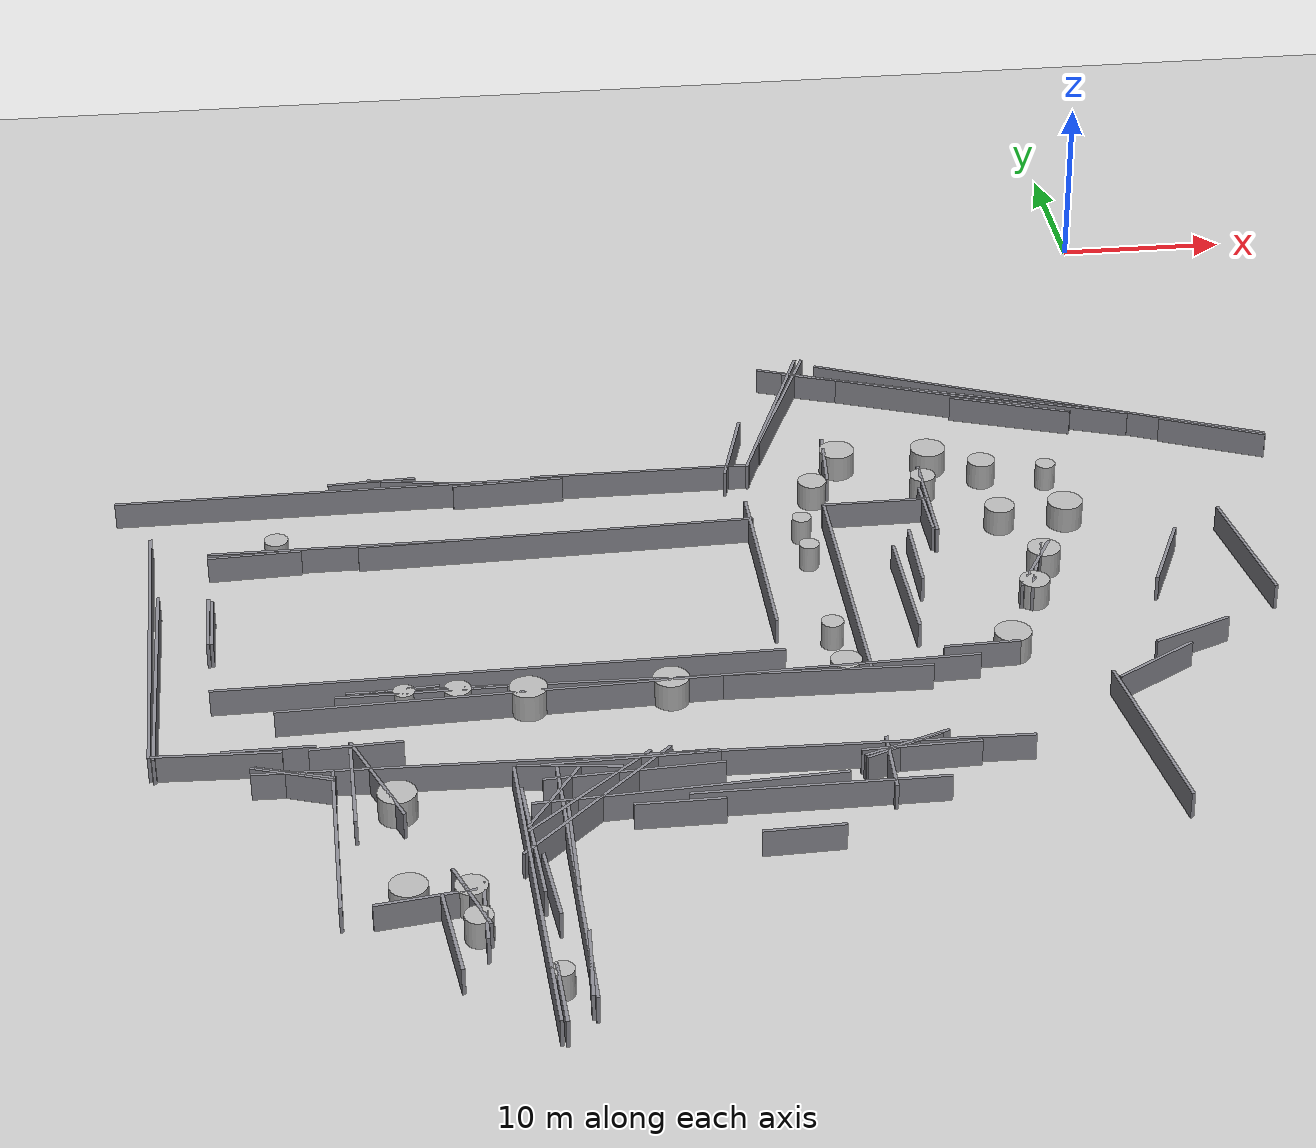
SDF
<?xml version="1.0"?>
<sdf version="1.6">
  <world name="map_real_1_world">
    <gravity>0 0 -9.81</gravity>
    <include><uri>model://ground_plane</uri></include>
    <include><uri>model://sun</uri></include>

    <physics type="ode">
      <max_step_size>0.001</max_step_size>
      <real_time_update_rate>1000</real_time_update_rate>
    </physics>

    <!-- Generated from the ROS occupancy map. Static obstacles are collision-safe walls. -->
    <model name="map_real_1_walls">
      <static>true</static>
      <self_collide>false</self_collide>
      <link name="wall_0000">
        <pose>-32.2968 -53.4881 0.7500 0 0 3.1128</pose>
        <collision name="collision">
          <geometry>
            <box><size>39.5153 0.1800 1.5000</size></box>
          </geometry>
        </collision>
        <visual name="visual">
          <geometry>
            <box><size>39.5153 0.1800 1.5000</size></box>
          </geometry>
          <material>
            <ambient>0.35 0.35 0.38 1</ambient>
            <diffuse>0.55 0.55 0.58 1</diffuse>
          </material>
        </visual>
      </link>
      <link name="wall_0001">
        <pose>-32.4465 -47.1259 0.7500 0 0 0.0279</pose>
        <collision name="collision">
          <geometry>
            <box><size>36.8220 0.1800 1.5000</size></box>
          </geometry>
        </collision>
        <visual name="visual">
          <geometry>
            <box><size>36.8220 0.1800 1.5000</size></box>
          </geometry>
          <material>
            <ambient>0.35 0.35 0.38 1</ambient>
            <diffuse>0.55 0.55 0.58 1</diffuse>
          </material>
        </visual>
      </link>
      <link name="wall_0002">
        <pose>-31.9066 -46.8629 0.7500 0 0 -0.0308</pose>
        <collision name="collision">
          <geometry>
            <box><size>30.5102 0.1800 1.5000</size></box>
          </geometry>
        </collision>
        <visual name="visual">
          <geometry>
            <box><size>30.5102 0.1800 1.5000</size></box>
          </geometry>
          <material>
            <ambient>0.35 0.35 0.38 1</ambient>
            <diffuse>0.55 0.55 0.58 1</diffuse>
          </material>
        </visual>
      </link>
      <link name="wall_0003">
        <pose>-39.1482 -45.1993 0.7500 0 0 0.0120</pose>
        <collision name="collision">
          <geometry>
            <box><size>30.0050 0.1800 1.5000</size></box>
          </geometry>
        </collision>
        <visual name="visual">
          <geometry>
            <box><size>30.0050 0.1800 1.5000</size></box>
          </geometry>
          <material>
            <ambient>0.35 0.35 0.38 1</ambient>
            <diffuse>0.55 0.55 0.58 1</diffuse>
          </material>
        </visual>
      </link>
      <link name="wall_0004">
        <pose>-6.0743 -20.7906 0.7500 0 0 -0.4080</pose>
        <collision name="collision">
          <geometry>
            <box><size>27.0619 0.1800 1.5000</size></box>
          </geometry>
        </collision>
        <visual name="visual">
          <geometry>
            <box><size>27.0619 0.1800 1.5000</size></box>
          </geometry>
          <material>
            <ambient>0.35 0.35 0.38 1</ambient>
            <diffuse>0.55 0.55 0.58 1</diffuse>
          </material>
        </visual>
      </link>
      <link name="wall_0005">
        <pose>-47.9497 -26.3851 0.7500 0 0 0.0016</pose>
        <collision name="collision">
          <geometry>
            <box><size>23.1998 0.1800 1.5000</size></box>
          </geometry>
        </collision>
        <visual name="visual">
          <geometry>
            <box><size>23.1998 0.1800 1.5000</size></box>
          </geometry>
          <material>
            <ambient>0.35 0.35 0.38 1</ambient>
            <diffuse>0.55 0.55 0.58 1</diffuse>
          </material>
        </visual>
      </link>
      <link name="wall_0006">
        <pose>-35.2016 -32.2281 0.7500 0 0 0.0225</pose>
        <collision name="collision">
          <geometry>
            <box><size>21.9012 0.1800 1.5000</size></box>
          </geometry>
        </collision>
        <visual name="visual">
          <geometry>
            <box><size>21.9012 0.1800 1.5000</size></box>
          </geometry>
          <material>
            <ambient>0.35 0.35 0.38 1</ambient>
            <diffuse>0.55 0.55 0.58 1</diffuse>
          </material>
        </visual>
      </link>
      <link name="wall_0007">
        <pose>-10.7991 -19.5793 0.7500 0 0 -0.3410</pose>
        <collision name="collision">
          <geometry>
            <box><size>20.6848 0.1800 1.5000</size></box>
          </geometry>
        </collision>
        <visual name="visual">
          <geometry>
            <box><size>20.6848 0.1800 1.5000</size></box>
          </geometry>
          <material>
            <ambient>0.35 0.35 0.38 1</ambient>
            <diffuse>0.55 0.55 0.58 1</diffuse>
          </material>
        </visual>
      </link>
      <link name="wall_0008">
        <pose>-57.2846 -40.6507 0.7500 0 0 1.5897</pose>
        <collision name="collision">
          <geometry>
            <box><size>20.6039 0.1800 1.5000</size></box>
          </geometry>
        </collision>
        <visual name="visual">
          <geometry>
            <box><size>20.6039 0.1800 1.5000</size></box>
          </geometry>
          <material>
            <ambient>0.35 0.35 0.38 1</ambient>
            <diffuse>0.55 0.55 0.58 1</diffuse>
          </material>
        </visual>
      </link>
      <link name="wall_0009">
        <pose>-38.5594 -63.5527 0.7500 0 0 1.6155</pose>
        <collision name="collision">
          <geometry>
            <box><size>19.6206 0.1800 1.5000</size></box>
          </geometry>
        </collision>
        <visual name="visual">
          <geometry>
            <box><size>19.6206 0.1800 1.5000</size></box>
          </geometry>
          <material>
            <ambient>0.35 0.35 0.38 1</ambient>
            <diffuse>0.55 0.55 0.58 1</diffuse>
          </material>
        </visual>
      </link>
      <link name="wall_0010">
        <pose>-36.6086 -62.9502 0.7500 0 0 1.5994</pose>
        <collision name="collision">
          <geometry>
            <box><size>18.0069 0.1800 1.5000</size></box>
          </geometry>
        </collision>
        <visual name="visual">
          <geometry>
            <box><size>18.0069 0.1800 1.5000</size></box>
          </geometry>
          <material>
            <ambient>0.35 0.35 0.38 1</ambient>
            <diffuse>0.55 0.55 0.58 1</diffuse>
          </material>
        </visual>
      </link>
      <link name="wall_0011">
        <pose>-14.0934 -18.5332 0.7500 0 0 -0.3732</pose>
        <collision name="collision">
          <geometry>
            <box><size>16.8798 0.1800 1.5000</size></box>
          </geometry>
        </collision>
        <visual name="visual">
          <geometry>
            <box><size>16.8798 0.1800 1.5000</size></box>
          </geometry>
          <material>
            <ambient>0.35 0.35 0.38 1</ambient>
            <diffuse>0.55 0.55 0.58 1</diffuse>
          </material>
        </visual>
      </link>
      <link name="wall_0012">
        <pose>-20.0296 -39.1971 0.7500 0 0 1.5837</pose>
        <collision name="collision">
          <geometry>
            <box><size>16.1012 0.1800 1.5000</size></box>
          </geometry>
        </collision>
        <visual name="visual">
          <geometry>
            <box><size>16.1012 0.1800 1.5000</size></box>
          </geometry>
          <material>
            <ambient>0.35 0.35 0.38 1</ambient>
            <diffuse>0.55 0.55 0.58 1</diffuse>
          </material>
        </visual>
      </link>
      <link name="wall_0013">
        <pose>-30.3503 -56.4934 0.7500 0 0 -3.0891</pose>
        <collision name="collision">
          <geometry>
            <box><size>16.0147 0.1800 1.5000</size></box>
          </geometry>
        </collision>
        <visual name="visual">
          <geometry>
            <box><size>16.0147 0.1800 1.5000</size></box>
          </geometry>
          <material>
            <ambient>0.35 0.35 0.38 1</ambient>
            <diffuse>0.55 0.55 0.58 1</diffuse>
          </material>
        </visual>
      </link>
      <link name="wall_0014">
        <pose>-56.9065 -43.7000 0.7500 0 0 -1.5660</pose>
        <collision name="collision">
          <geometry>
            <box><size>14.9003 0.1800 1.5000</size></box>
          </geometry>
        </collision>
        <visual name="visual">
          <geometry>
            <box><size>14.9003 0.1800 1.5000</size></box>
          </geometry>
          <material>
            <ambient>0.35 0.35 0.38 1</ambient>
            <diffuse>0.55 0.55 0.58 1</diffuse>
          </material>
        </visual>
      </link>
      <link name="wall_0015">
        <pose>-47.5000 -32.3005 0.7500 0 0 3.1362</pose>
        <collision name="collision">
          <geometry>
            <box><size>13.7003 0.1800 1.5000</size></box>
          </geometry>
        </collision>
        <visual name="visual">
          <geometry>
            <box><size>13.7003 0.1800 1.5000</size></box>
          </geometry>
          <material>
            <ambient>0.35 0.35 0.38 1</ambient>
            <diffuse>0.55 0.55 0.58 1</diffuse>
          </material>
        </visual>
      </link>
      <link name="wall_0016">
        <pose>-23.9490 -57.0020 0.7500 0 0 -0.0029</pose>
        <collision name="collision">
          <geometry>
            <box><size>13.1999 0.1800 1.5000</size></box>
          </geometry>
        </collision>
        <visual name="visual">
          <geometry>
            <box><size>13.1999 0.1800 1.5000</size></box>
          </geometry>
          <material>
            <ambient>0.35 0.35 0.38 1</ambient>
            <diffuse>0.55 0.55 0.58 1</diffuse>
          </material>
        </visual>
      </link>
      <link name="wall_0017">
        <pose>-21.7242 -20.4728 0.7500 0 0 1.2194</pose>
        <collision name="collision">
          <geometry>
            <box><size>12.6873 0.1800 1.5000</size></box>
          </geometry>
        </collision>
        <visual name="visual">
          <geometry>
            <box><size>12.6873 0.1800 1.5000</size></box>
          </geometry>
          <material>
            <ambient>0.35 0.35 0.38 1</ambient>
            <diffuse>0.55 0.55 0.58 1</diffuse>
          </material>
        </visual>
      </link>
      <link name="wall_0018">
        <pose>-29.9998 -26.2219 0.7500 0 0 -0.0077</pose>
        <collision name="collision">
          <geometry>
            <box><size>12.5012 0.1800 1.5000</size></box>
          </geometry>
        </collision>
        <visual name="visual">
          <geometry>
            <box><size>12.5012 0.1800 1.5000</size></box>
          </geometry>
          <material>
            <ambient>0.35 0.35 0.38 1</ambient>
            <diffuse>0.55 0.55 0.58 1</diffuse>
          </material>
        </visual>
      </link>
      <link name="wall_0019">
        <pose>-24.3505 -36.1983 0.7500 0 0 1.5877</pose>
        <collision name="collision">
          <geometry>
            <box><size>12.1017 0.1800 1.5000</size></box>
          </geometry>
        </collision>
        <visual name="visual">
          <geometry>
            <box><size>12.1017 0.1800 1.5000</size></box>
          </geometry>
          <material>
            <ambient>0.35 0.35 0.38 1</ambient>
            <diffuse>0.55 0.55 0.58 1</diffuse>
          </material>
        </visual>
      </link>
      <link name="wall_0020">
        <pose>-35.0000 -56.9000 0.7500 0 0 0.7857</pose>
        <collision name="collision">
          <geometry>
            <box><size>11.3137 0.1800 1.5000</size></box>
          </geometry>
        </collision>
        <visual name="visual">
          <geometry>
            <box><size>11.3137 0.1800 1.5000</size></box>
          </geometry>
          <material>
            <ambient>0.35 0.35 0.38 1</ambient>
            <diffuse>0.55 0.55 0.58 1</diffuse>
          </material>
        </visual>
      </link>
      <link name="wall_0021">
        <pose>-6.6707 -54.4532 0.7500 0 0 1.7226</pose>
        <collision name="collision">
          <geometry>
            <box><size>11.0852 0.1800 1.5000</size></box>
          </geometry>
        </collision>
        <visual name="visual">
          <geometry>
            <box><size>11.0852 0.1800 1.5000</size></box>
          </geometry>
          <material>
            <ambient>0.35 0.35 0.38 1</ambient>
            <diffuse>0.55 0.55 0.58 1</diffuse>
          </material>
        </visual>
      </link>
      <link name="wall_0022">
        <pose>-47.9081 -58.5489 0.7500 0 0 -1.5593</pose>
        <collision name="collision">
          <geometry>
            <box><size>11.0004 0.1800 1.5000</size></box>
          </geometry>
        </collision>
        <visual name="visual">
          <geometry>
            <box><size>11.0004 0.1800 1.5000</size></box>
          </geometry>
          <material>
            <ambient>0.35 0.35 0.38 1</ambient>
            <diffuse>0.55 0.55 0.58 1</diffuse>
          </material>
        </visual>
      </link>
      <link name="wall_0023">
        <pose>-21.0336 -19.2364 0.7500 0 0 1.1875</pose>
        <collision name="collision">
          <geometry>
            <box><size>10.1016 0.1800 1.5000</size></box>
          </geometry>
        </collision>
        <visual name="visual">
          <geometry>
            <box><size>10.1016 0.1800 1.5000</size></box>
          </geometry>
          <material>
            <ambient>0.35 0.35 0.38 1</ambient>
            <diffuse>0.55 0.55 0.58 1</diffuse>
          </material>
        </visual>
      </link>
      <link name="wall_0024">
        <pose>-33.0397 -54.7589 0.7500 0 0 0.0494</pose>
        <collision name="collision">
          <geometry>
            <box><size>9.2184 0.1800 1.5000</size></box>
          </geometry>
        </collision>
        <visual name="visual">
          <geometry>
            <box><size>9.2184 0.1800 1.5000</size></box>
          </geometry>
          <material>
            <ambient>0.35 0.35 0.38 1</ambient>
            <diffuse>0.55 0.55 0.58 1</diffuse>
          </material>
        </visual>
      </link>
      <link name="wall_0025">
        <pose>-33.1002 -53.6880 0.7500 0 0 0.0149</pose>
        <collision name="collision">
          <geometry>
            <box><size>9.1035 0.1800 1.5000</size></box>
          </geometry>
        </collision>
        <visual name="visual">
          <geometry>
            <box><size>9.1035 0.1800 1.5000</size></box>
          </geometry>
          <material>
            <ambient>0.35 0.35 0.38 1</ambient>
            <diffuse>0.55 0.55 0.58 1</diffuse>
          </material>
        </visual>
      </link>
      <link name="wall_0026">
        <pose>-35.3500 -56.1500 0.7500 0 0 0.7378</pose>
        <collision name="collision">
          <geometry>
            <box><size>8.9196 0.1800 1.5000</size></box>
          </geometry>
        </collision>
        <visual name="visual">
          <geometry>
            <box><size>8.9196 0.1800 1.5000</size></box>
          </geometry>
          <material>
            <ambient>0.35 0.35 0.38 1</ambient>
            <diffuse>0.55 0.55 0.58 1</diffuse>
          </material>
        </visual>
      </link>
      <link name="wall_0027">
        <pose>-43.2997 -46.7265 0.7500 0 0 0.0026</pose>
        <collision name="collision">
          <geometry>
            <box><size>8.9002 0.1800 1.5000</size></box>
          </geometry>
        </collision>
        <visual name="visual">
          <geometry>
            <box><size>8.9002 0.1800 1.5000</size></box>
          </geometry>
          <material>
            <ambient>0.35 0.35 0.38 1</ambient>
            <diffuse>0.55 0.55 0.58 1</diffuse>
          </material>
        </visual>
      </link>
      <link name="wall_0028">
        <pose>-38.4500 -59.7500 0.7500 0 0 -1.4995</pose>
        <collision name="collision">
          <geometry>
            <box><size>8.4214 0.1800 1.5000</size></box>
          </geometry>
        </collision>
        <visual name="visual">
          <geometry>
            <box><size>8.4214 0.1800 1.5000</size></box>
          </geometry>
          <material>
            <ambient>0.35 0.35 0.38 1</ambient>
            <diffuse>0.55 0.55 0.58 1</diffuse>
          </material>
        </visual>
      </link>
      <link name="wall_0029">
        <pose>2.3224 -37.9465 0.7500 0 0 1.7243</pose>
        <collision name="collision">
          <geometry>
            <box><size>8.3329 0.1800 1.5000</size></box>
          </geometry>
        </collision>
        <visual name="visual">
          <geometry>
            <box><size>8.3329 0.1800 1.5000</size></box>
          </geometry>
          <material>
            <ambient>0.35 0.35 0.38 1</ambient>
            <diffuse>0.55 0.55 0.58 1</diffuse>
          </material>
        </visual>
      </link>
      <link name="wall_0030">
        <pose>-16.8640 -39.5968 0.7500 0 0 1.5940</pose>
        <collision name="collision">
          <geometry>
            <box><size>7.9002 0.1800 1.5000</size></box>
          </geometry>
        </collision>
        <visual name="visual">
          <geometry>
            <box><size>7.9002 0.1800 1.5000</size></box>
          </geometry>
          <material>
            <ambient>0.35 0.35 0.38 1</ambient>
            <diffuse>0.55 0.55 0.58 1</diffuse>
          </material>
        </visual>
      </link>
      <link name="wall_0031">
        <pose>-32.2501 -53.5472 0.7500 0 0 0.0186</pose>
        <collision name="collision">
          <geometry>
            <box><size>7.2025 0.1800 1.5000</size></box>
          </geometry>
        </collision>
        <visual name="visual">
          <geometry>
            <box><size>7.2025 0.1800 1.5000</size></box>
          </geometry>
          <material>
            <ambient>0.35 0.35 0.38 1</ambient>
            <diffuse>0.55 0.55 0.58 1</diffuse>
          </material>
        </visual>
      </link>
      <link name="wall_0032">
        <pose>-7.7000 -21.2500 0.7500 0 0 -0.3440</pose>
        <collision name="collision">
          <geometry>
            <box><size>7.1169 0.1800 1.5000</size></box>
          </geometry>
        </collision>
        <visual name="visual">
          <geometry>
            <box><size>7.1169 0.1800 1.5000</size></box>
          </geometry>
          <material>
            <ambient>0.35 0.35 0.38 1</ambient>
            <diffuse>0.55 0.55 0.58 1</diffuse>
          </material>
        </visual>
      </link>
      <link name="wall_0033">
        <pose>-36.5500 -60.3500 0.7500 0 0 1.5708</pose>
        <collision name="collision">
          <geometry>
            <box><size>6.8000 0.1800 1.5000</size></box>
          </geometry>
        </collision>
        <visual name="visual">
          <geometry>
            <box><size>6.8000 0.1800 1.5000</size></box>
          </geometry>
          <material>
            <ambient>0.35 0.35 0.38 1</ambient>
            <diffuse>0.55 0.55 0.58 1</diffuse>
          </material>
        </visual>
      </link>
      <link name="wall_0034">
        <pose>-14.2500 -30.9500 0.7500 0 0 1.5708</pose>
        <collision name="collision">
          <geometry>
            <box><size>6.8000 0.1800 1.5000</size></box>
          </geometry>
        </collision>
        <visual name="visual">
          <geometry>
            <box><size>6.8000 0.1800 1.5000</size></box>
          </geometry>
          <material>
            <ambient>0.35 0.35 0.38 1</ambient>
            <diffuse>0.55 0.55 0.58 1</diffuse>
          </material>
        </visual>
      </link>
      <link name="wall_0035">
        <pose>-45.8000 -53.9000 0.7500 0 0 -1.1930</pose>
        <collision name="collision">
          <geometry>
            <box><size>6.7779 0.1800 1.5000</size></box>
          </geometry>
        </collision>
        <visual name="visual">
          <geometry>
            <box><size>6.7779 0.1800 1.5000</size></box>
          </geometry>
          <material>
            <ambient>0.35 0.35 0.38 1</ambient>
            <diffuse>0.55 0.55 0.58 1</diffuse>
          </material>
        </visual>
      </link>
      <link name="wall_0036">
        <pose>-53.7500 -51.0000 0.7500 0 0 -0.0454</pose>
        <collision name="collision">
          <geometry>
            <box><size>6.6068 0.1800 1.5000</size></box>
          </geometry>
        </collision>
        <visual name="visual">
          <geometry>
            <box><size>6.6068 0.1800 1.5000</size></box>
          </geometry>
          <material>
            <ambient>0.35 0.35 0.38 1</ambient>
            <diffuse>0.55 0.55 0.58 1</diffuse>
          </material>
        </visual>
      </link>
      <link name="wall_0037">
        <pose>-42.1421 -46.5336 0.7500 0 0 -0.0189</pose>
        <collision name="collision">
          <geometry>
            <box><size>6.3989 0.1800 1.5000</size></box>
          </geometry>
        </collision>
        <visual name="visual">
          <geometry>
            <box><size>6.3989 0.1800 1.5000</size></box>
          </geometry>
          <material>
            <ambient>0.35 0.35 0.38 1</ambient>
            <diffuse>0.55 0.55 0.58 1</diffuse>
          </material>
        </visual>
      </link>
      <link name="wall_0038">
        <pose>3.5000 -25.1000 0.7500 0 0 -0.4133</pose>
        <collision name="collision">
          <geometry>
            <box><size>6.2241 0.1800 1.5000</size></box>
          </geometry>
        </collision>
        <visual name="visual">
          <geometry>
            <box><size>6.2241 0.1800 1.5000</size></box>
          </geometry>
          <material>
            <ambient>0.35 0.35 0.38 1</ambient>
            <diffuse>0.55 0.55 0.58 1</diffuse>
          </material>
        </visual>
      </link>
      <link name="wall_0039">
        <pose>-37.5500 -26.5500 0.7500 0 0 0.0322</pose>
        <collision name="collision">
          <geometry>
            <box><size>6.2032 0.1800 1.5000</size></box>
          </geometry>
        </collision>
        <visual name="visual">
          <geometry>
            <box><size>6.2032 0.1800 1.5000</size></box>
          </geometry>
          <material>
            <ambient>0.35 0.35 0.38 1</ambient>
            <diffuse>0.55 0.55 0.58 1</diffuse>
          </material>
        </visual>
      </link>
      <link name="wall_0040">
        <pose>-18.4500 -54.3000 0.7500 0 0 0.0161</pose>
        <collision name="collision">
          <geometry>
            <box><size>6.2008 0.1800 1.5000</size></box>
          </geometry>
        </collision>
        <visual name="visual">
          <geometry>
            <box><size>6.2008 0.1800 1.5000</size></box>
          </geometry>
          <material>
            <ambient>0.35 0.35 0.38 1</ambient>
            <diffuse>0.55 0.55 0.58 1</diffuse>
          </material>
        </visual>
      </link>
      <link name="wall_0041">
        <pose>-42.4000 -26.0000 0.7500 0 0 -0.1784</pose>
        <collision name="collision">
          <geometry>
            <box><size>6.1984 0.1800 1.5000</size></box>
          </geometry>
        </collision>
        <visual name="visual">
          <geometry>
            <box><size>6.1984 0.1800 1.5000</size></box>
          </geometry>
          <material>
            <ambient>0.35 0.35 0.38 1</ambient>
            <diffuse>0.55 0.55 0.58 1</diffuse>
          </material>
        </visual>
      </link>
      <link name="wall_0042">
        <pose>-47.0000 -54.3017 0.7500 0 0 1.5875</pose>
        <collision name="collision">
          <geometry>
            <box><size>6.1008 0.1800 1.5000</size></box>
          </geometry>
        </collision>
        <visual name="visual">
          <geometry>
            <box><size>6.1008 0.1800 1.5000</size></box>
          </geometry>
          <material>
            <ambient>0.35 0.35 0.38 1</ambient>
            <diffuse>0.55 0.55 0.58 1</diffuse>
          </material>
        </visual>
      </link>
      <link name="wall_0043">
        <pose>-17.2500 -31.0500 0.7500 0 0 0.0000</pose>
        <collision name="collision">
          <geometry>
            <box><size>6.0000 0.1800 1.5000</size></box>
          </geometry>
        </collision>
        <visual name="visual">
          <geometry>
            <box><size>6.0000 0.1800 1.5000</size></box>
          </geometry>
          <material>
            <ambient>0.35 0.35 0.38 1</ambient>
            <diffuse>0.55 0.55 0.58 1</diffuse>
          </material>
        </visual>
      </link>
      <link name="wall_0044">
        <pose>-24.5000 -24.2500 0.7500 0 0 1.3091</pose>
        <collision name="collision">
          <geometry>
            <box><size>5.7974 0.1800 1.5000</size></box>
          </geometry>
        </collision>
        <visual name="visual">
          <geometry>
            <box><size>5.7974 0.1800 1.5000</size></box>
          </geometry>
          <material>
            <ambient>0.35 0.35 0.38 1</ambient>
            <diffuse>0.55 0.55 0.58 1</diffuse>
          </material>
        </visual>
      </link>
      <link name="wall_0045">
        <pose>-42.7000 -66.4000 0.7500 0 0 -1.4486</pose>
        <collision name="collision">
          <geometry>
            <box><size>5.7428 0.1800 1.5000</size></box>
          </geometry>
        </collision>
        <visual name="visual">
          <geometry>
            <box><size>5.7428 0.1800 1.5000</size></box>
          </geometry>
          <material>
            <ambient>0.35 0.35 0.38 1</ambient>
            <diffuse>0.55 0.55 0.58 1</diffuse>
          </material>
        </visual>
      </link>
      <link name="wall_0046">
        <pose>-37.2000 -56.5000 0.7500 0 0 1.0180</pose>
        <collision name="collision">
          <geometry>
            <box><size>5.5227 0.1800 1.5000</size></box>
          </geometry>
        </collision>
        <visual name="visual">
          <geometry>
            <box><size>5.5227 0.1800 1.5000</size></box>
          </geometry>
          <material>
            <ambient>0.35 0.35 0.38 1</ambient>
            <diffuse>0.55 0.55 0.58 1</diffuse>
          </material>
        </visual>
      </link>
      <link name="wall_0047">
        <pose>-36.2000 -54.0000 0.7500 0 0 -0.1313</pose>
        <collision name="collision">
          <geometry>
            <box><size>5.3460 0.1800 1.5000</size></box>
          </geometry>
        </collision>
        <visual name="visual">
          <geometry>
            <box><size>5.3460 0.1800 1.5000</size></box>
          </geometry>
          <material>
            <ambient>0.35 0.35 0.38 1</ambient>
            <diffuse>0.55 0.55 0.58 1</diffuse>
          </material>
        </visual>
      </link>
      <link name="wall_0048">
        <pose>-2.2000 -38.1000 0.7500 0 0 1.1659</pose>
        <collision name="collision">
          <geometry>
            <box><size>5.3310 0.1800 1.5000</size></box>
          </geometry>
        </collision>
        <visual name="visual">
          <geometry>
            <box><size>5.3310 0.1800 1.5000</size></box>
          </geometry>
          <material>
            <ambient>0.35 0.35 0.38 1</ambient>
            <diffuse>0.55 0.55 0.58 1</diffuse>
          </material>
        </visual>
      </link>
      <link name="wall_0049">
        <pose>-5.0500 -48.2000 0.7500 0 0 0.5504</pose>
        <collision name="collision">
          <geometry>
            <box><size>5.1624 0.1800 1.5000</size></box>
          </geometry>
        </collision>
        <visual name="visual">
          <geometry>
            <box><size>5.1624 0.1800 1.5000</size></box>
          </geometry>
          <material>
            <ambient>0.35 0.35 0.38 1</ambient>
            <diffuse>0.55 0.55 0.58 1</diffuse>
          </material>
        </visual>
      </link>
      <link name="wall_0050">
        <pose>-51.8000 -32.5500 0.7500 0 0 0.0392</pose>
        <collision name="collision">
          <geometry>
            <box><size>5.1039 0.1800 1.5000</size></box>
          </geometry>
        </collision>
        <visual name="visual">
          <geometry>
            <box><size>5.1039 0.1800 1.5000</size></box>
          </geometry>
          <material>
            <ambient>0.35 0.35 0.38 1</ambient>
            <diffuse>0.55 0.55 0.58 1</diffuse>
          </material>
        </visual>
      </link>
      <link name="wall_0051">
        <pose>-43.8500 -63.7000 0.7500 0 0 0.1391</pose>
        <collision name="collision">
          <geometry>
            <box><size>5.0488 0.1800 1.5000</size></box>
          </geometry>
        </collision>
        <visual name="visual">
          <geometry>
            <box><size>5.0488 0.1800 1.5000</size></box>
          </geometry>
          <material>
            <ambient>0.35 0.35 0.38 1</ambient>
            <diffuse>0.55 0.55 0.58 1</diffuse>
          </material>
        </visual>
      </link>
      <link name="wall_0052">
        <pose>-15.8509 -36.6500 0.7500 0 0 1.5620</pose>
        <collision name="collision">
          <geometry>
            <box><size>5.0016 0.1800 1.5000</size></box>
          </geometry>
        </collision>
        <visual name="visual">
          <geometry>
            <box><size>5.0016 0.1800 1.5000</size></box>
          </geometry>
          <material>
            <ambient>0.35 0.35 0.38 1</ambient>
            <diffuse>0.55 0.55 0.58 1</diffuse>
          </material>
        </visual>
      </link>
      <link name="wall_0053">
        <pose>-9.4500 -38.3500 0.7500 0 0 1.2870</pose>
        <collision name="collision">
          <geometry>
            <box><size>5.0000 0.1800 1.5000</size></box>
          </geometry>
        </collision>
        <visual name="visual">
          <geometry>
            <box><size>5.0000 0.1800 1.5000</size></box>
          </geometry>
          <material>
            <ambient>0.35 0.35 0.38 1</ambient>
            <diffuse>0.55 0.55 0.58 1</diffuse>
          </material>
        </visual>
      </link>
      <link name="wall_0054">
        <pose>-45.1998 -25.6045 0.7500 0 0 0.0452</pose>
        <collision name="collision">
          <geometry>
            <box><size>4.9176 0.1800 1.5000</size></box>
          </geometry>
        </collision>
        <visual name="visual">
          <geometry>
            <box><size>4.9176 0.1800 1.5000</size></box>
          </geometry>
          <material>
            <ambient>0.35 0.35 0.38 1</ambient>
            <diffuse>0.55 0.55 0.58 1</diffuse>
          </material>
        </visual>
      </link>
      <link name="wall_0055">
        <pose>-19.1500 -54.0000 0.7500 0 0 0.3540</pose>
        <collision name="collision">
          <geometry>
            <box><size>4.9041 0.1800 1.5000</size></box>
          </geometry>
        </collision>
        <visual name="visual">
          <geometry>
            <box><size>4.9041 0.1800 1.5000</size></box>
          </geometry>
          <material>
            <ambient>0.35 0.35 0.38 1</ambient>
            <diffuse>0.55 0.55 0.58 1</diffuse>
          </material>
        </visual>
      </link>
      <link name="wall_0056">
        <pose>-9.5000 -38.3000 0.7500 0 0 1.0796</pose>
        <collision name="collision">
          <geometry>
            <box><size>4.8765 0.1800 1.5000</size></box>
          </geometry>
        </collision>
        <visual name="visual">
          <geometry>
            <box><size>4.8765 0.1800 1.5000</size></box>
          </geometry>
          <material>
            <ambient>0.35 0.35 0.38 1</ambient>
            <diffuse>0.55 0.55 0.58 1</diffuse>
          </material>
        </visual>
      </link>
      <link name="wall_0057">
        <pose>-46.7500 -51.0500 0.7500 0 0 0.0416</pose>
        <collision name="collision">
          <geometry>
            <box><size>4.8042 0.1800 1.5000</size></box>
          </geometry>
        </collision>
        <visual name="visual">
          <geometry>
            <box><size>4.8042 0.1800 1.5000</size></box>
          </geometry>
          <material>
            <ambient>0.35 0.35 0.38 1</ambient>
            <diffuse>0.55 0.55 0.58 1</diffuse>
          </material>
        </visual>
      </link>
      <link name="wall_0058">
        <pose>-51.1500 -50.8500 0.7500 0 0 0.0000</pose>
        <collision name="collision">
          <geometry>
            <box><size>4.8000 0.1800 1.5000</size></box>
          </geometry>
        </collision>
        <visual name="visual">
          <geometry>
            <box><size>4.8000 0.1800 1.5000</size></box>
          </geometry>
          <material>
            <ambient>0.35 0.35 0.38 1</ambient>
            <diffuse>0.55 0.55 0.58 1</diffuse>
          </material>
        </visual>
      </link>
      <link name="wall_0059">
        <pose>-37.8000 -63.3000 0.7500 0 0 -1.4648</pose>
        <collision name="collision">
          <geometry>
            <box><size>4.7265 0.1800 1.5000</size></box>
          </geometry>
        </collision>
        <visual name="visual">
          <geometry>
            <box><size>4.7265 0.1800 1.5000</size></box>
          </geometry>
          <material>
            <ambient>0.35 0.35 0.38 1</ambient>
            <diffuse>0.55 0.55 0.58 1</diffuse>
          </material>
        </visual>
      </link>
      <link name="wall_0060">
        <pose>-36.4500 -69.4000 0.7500 0 0 1.5283</pose>
        <collision name="collision">
          <geometry>
            <box><size>4.7043 0.1800 1.5000</size></box>
          </geometry>
        </collision>
        <visual name="visual">
          <geometry>
            <box><size>4.7043 0.1800 1.5000</size></box>
          </geometry>
          <material>
            <ambient>0.35 0.35 0.38 1</ambient>
            <diffuse>0.55 0.55 0.58 1</diffuse>
          </material>
        </visual>
      </link>
      <link name="wall_0061">
        <pose>-41.6500 -63.8500 0.7500 0 0 -1.2220</pose>
        <collision name="collision">
          <geometry>
            <box><size>4.6819 0.1800 1.5000</size></box>
          </geometry>
        </collision>
        <visual name="visual">
          <geometry>
            <box><size>4.6819 0.1800 1.5000</size></box>
          </geometry>
          <material>
            <ambient>0.35 0.35 0.38 1</ambient>
            <diffuse>0.55 0.55 0.58 1</diffuse>
          </material>
        </visual>
      </link>
      <link name="wall_0062">
        <pose>-2.5000 -45.6500 0.7500 0 0 0.3964</pose>
        <collision name="collision">
          <geometry>
            <box><size>4.6615 0.1800 1.5000</size></box>
          </geometry>
        </collision>
        <visual name="visual">
          <geometry>
            <box><size>4.6615 0.1800 1.5000</size></box>
          </geometry>
          <material>
            <ambient>0.35 0.35 0.38 1</ambient>
            <diffuse>0.55 0.55 0.58 1</diffuse>
          </material>
        </visual>
      </link>
      <link name="wall_0063">
        <pose>-31.0500 -57.5500 0.7500 0 0 0.0000</pose>
        <collision name="collision">
          <geometry>
            <box><size>4.6000 0.1800 1.5000</size></box>
          </geometry>
        </collision>
        <visual name="visual">
          <geometry>
            <box><size>4.6000 0.1800 1.5000</size></box>
          </geometry>
          <material>
            <ambient>0.35 0.35 0.38 1</ambient>
            <diffuse>0.55 0.55 0.58 1</diffuse>
          </material>
        </visual>
      </link>
      <link name="wall_0064">
        <pose>-44.6000 -46.4000 0.7500 0 0 0.0666</pose>
        <collision name="collision">
          <geometry>
            <box><size>4.5100 0.1800 1.5000</size></box>
          </geometry>
        </collision>
        <visual name="visual">
          <geometry>
            <box><size>4.5100 0.1800 1.5000</size></box>
          </geometry>
          <material>
            <ambient>0.35 0.35 0.38 1</ambient>
            <diffuse>0.55 0.55 0.58 1</diffuse>
          </material>
        </visual>
      </link>
      <link name="wall_0065">
        <pose>-41.0500 -64.9000 0.7500 0 0 1.5708</pose>
        <collision name="collision">
          <geometry>
            <box><size>4.5000 0.1800 1.5000</size></box>
          </geometry>
        </collision>
        <visual name="visual">
          <geometry>
            <box><size>4.5000 0.1800 1.5000</size></box>
          </geometry>
          <material>
            <ambient>0.35 0.35 0.38 1</ambient>
            <diffuse>0.55 0.55 0.58 1</diffuse>
          </material>
        </visual>
      </link>
      <link name="wall_0066">
        <pose>-49.9500 -53.1000 0.7500 0 0 -0.3430</pose>
        <collision name="collision">
          <geometry>
            <box><size>4.4598 0.1800 1.5000</size></box>
          </geometry>
        </collision>
        <visual name="visual">
          <geometry>
            <box><size>4.4598 0.1800 1.5000</size></box>
          </geometry>
          <material>
            <ambient>0.35 0.35 0.38 1</ambient>
            <diffuse>0.55 0.55 0.58 1</diffuse>
          </material>
        </visual>
      </link>
      <link name="wall_0067">
        <pose>-19.3000 -54.2000 0.7500 0 0 0.3931</pose>
        <collision name="collision">
          <geometry>
            <box><size>4.4385 0.1800 1.5000</size></box>
          </geometry>
        </collision>
        <visual name="visual">
          <geometry>
            <box><size>4.4385 0.1800 1.5000</size></box>
          </geometry>
          <material>
            <ambient>0.35 0.35 0.38 1</ambient>
            <diffuse>0.55 0.55 0.58 1</diffuse>
          </material>
        </visual>
      </link>
      <link name="wall_0068">
        <pose>-19.4000 -26.1500 0.7500 0 0 1.5027</pose>
        <collision name="collision">
          <geometry>
            <box><size>4.4102 0.1800 1.5000</size></box>
          </geometry>
        </collision>
        <visual name="visual">
          <geometry>
            <box><size>4.4102 0.1800 1.5000</size></box>
          </geometry>
          <material>
            <ambient>0.35 0.35 0.38 1</ambient>
            <diffuse>0.55 0.55 0.58 1</diffuse>
          </material>
        </visual>
      </link>
      <link name="wall_0069">
        <pose>-14.5000 -32.0000 0.7500 0 0 -1.5475</pose>
        <collision name="collision">
          <geometry>
            <box><size>4.3012 0.1800 1.5000</size></box>
          </geometry>
        </collision>
        <visual name="visual">
          <geometry>
            <box><size>4.3012 0.1800 1.5000</size></box>
          </geometry>
          <material>
            <ambient>0.35 0.35 0.38 1</ambient>
            <diffuse>0.55 0.55 0.58 1</diffuse>
          </material>
        </visual>
      </link>
      <link name="wall_0070">
        <pose>-54.2500 -38.9000 0.7500 0 0 -1.5708</pose>
        <collision name="collision">
          <geometry>
            <box><size>4.3000 0.1800 1.5000</size></box>
          </geometry>
        </collision>
        <visual name="visual">
          <geometry>
            <box><size>4.3000 0.1800 1.5000</size></box>
          </geometry>
          <material>
            <ambient>0.35 0.35 0.38 1</ambient>
            <diffuse>0.55 0.55 0.58 1</diffuse>
          </material>
        </visual>
      </link>
      <link name="wall_0071">
        <pose>-49.8500 -53.0000 0.7500 0 0 -0.3142</pose>
        <collision name="collision">
          <geometry>
            <box><size>4.2059 0.1800 1.5000</size></box>
          </geometry>
        </collision>
        <visual name="visual">
          <geometry>
            <box><size>4.2059 0.1800 1.5000</size></box>
          </geometry>
          <material>
            <ambient>0.35 0.35 0.38 1</ambient>
            <diffuse>0.55 0.55 0.58 1</diffuse>
          </material>
        </visual>
      </link>
      <link name="wall_0072">
        <pose>-37.9500 -71.3500 0.7500 0 0 -1.5232</pose>
        <collision name="collision">
          <geometry>
            <box><size>4.2048 0.1800 1.5000</size></box>
          </geometry>
        </collision>
        <visual name="visual">
          <geometry>
            <box><size>4.2048 0.1800 1.5000</size></box>
          </geometry>
          <material>
            <ambient>0.35 0.35 0.38 1</ambient>
            <diffuse>0.55 0.55 0.58 1</diffuse>
          </material>
        </visual>
      </link>
      <link name="wall_0073">
        <pose>-25.2500 -60.4000 0.7500 0 0 0.0238</pose>
        <collision name="collision">
          <geometry>
            <box><size>4.2012 0.1800 1.5000</size></box>
          </geometry>
        </collision>
        <visual name="visual">
          <geometry>
            <box><size>4.2012 0.1800 1.5000</size></box>
          </geometry>
          <material>
            <ambient>0.35 0.35 0.38 1</ambient>
            <diffuse>0.55 0.55 0.58 1</diffuse>
          </material>
        </visual>
      </link>
      <link name="wall_0074">
        <pose>-20.2000 -55.4500 0.7500 0 0 1.5470</pose>
        <collision name="collision">
          <geometry>
            <box><size>4.2012 0.1800 1.5000</size></box>
          </geometry>
        </collision>
        <visual name="visual">
          <geometry>
            <box><size>4.2012 0.1800 1.5000</size></box>
          </geometry>
          <material>
            <ambient>0.35 0.35 0.38 1</ambient>
            <diffuse>0.55 0.55 0.58 1</diffuse>
          </material>
        </visual>
      </link>
      <link name="wall_0075">
        <pose>-13.8000 -45.7000 0.7500 0 0 0.0244</pose>
        <collision name="collision">
          <geometry>
            <box><size>4.1012 0.1800 1.5000</size></box>
          </geometry>
        </collision>
        <visual name="visual">
          <geometry>
            <box><size>4.1012 0.1800 1.5000</size></box>
          </geometry>
          <material>
            <ambient>0.35 0.35 0.38 1</ambient>
            <diffuse>0.55 0.55 0.58 1</diffuse>
          </material>
        </visual>
      </link>
      <link name="wall_0076">
        <pose>-54.0500 -39.0000 0.7500 0 0 1.5708</pose>
        <collision name="collision">
          <geometry>
            <box><size>4.1000 0.1800 1.5000</size></box>
          </geometry>
        </collision>
        <visual name="visual">
          <geometry>
            <box><size>4.1000 0.1800 1.5000</size></box>
          </geometry>
          <material>
            <ambient>0.35 0.35 0.38 1</ambient>
            <diffuse>0.55 0.55 0.58 1</diffuse>
          </material>
        </visual>
      </link>
      <link name="obstacle_000">
        <pose>-37.7902 -46.9011 0.7500 0 0 0</pose>
        <collision name="collision">
          <geometry>
            <cylinder><radius>1.0000</radius><length>1.5000</length></cylinder>
          </geometry>
        </collision>
        <visual name="visual">
          <geometry>
            <cylinder><radius>1.0000</radius><length>1.5000</length></cylinder>
          </geometry>
        </visual>
      </link>
      <link name="obstacle_001">
        <pose>-44.8575 -55.2099 0.7500 0 0 0</pose>
        <collision name="collision">
          <geometry>
            <cylinder><radius>1.0000</radius><length>1.5000</length></cylinder>
          </geometry>
        </collision>
        <visual name="visual">
          <geometry>
            <cylinder><radius>1.0000</radius><length>1.5000</length></cylinder>
          </geometry>
        </visual>
      </link>
      <link name="obstacle_002">
        <pose>-13.3238 -25.5750 0.7500 0 0 0</pose>
        <collision name="collision">
          <geometry>
            <cylinder><radius>1.0000</radius><length>1.5000</length></cylinder>
          </geometry>
        </collision>
        <visual name="visual">
          <geometry>
            <cylinder><radius>1.0000</radius><length>1.5000</length></cylinder>
          </geometry>
        </visual>
      </link>
      <link name="obstacle_003">
        <pose>-18.5524 -25.1915 0.7500 0 0 0</pose>
        <collision name="collision">
          <geometry>
            <cylinder><radius>1.0000</radius><length>1.5000</length></cylinder>
          </geometry>
        </collision>
        <visual name="visual">
          <geometry>
            <cylinder><radius>1.0000</radius><length>1.5000</length></cylinder>
          </geometry>
        </visual>
      </link>
      <link name="obstacle_004">
        <pose>-11.9865 -44.7404 0.7500 0 0 0</pose>
        <collision name="collision">
          <geometry>
            <cylinder><radius>1.0000</radius><length>1.5000</length></cylinder>
          </geometry>
        </collision>
        <visual name="visual">
          <geometry>
            <cylinder><radius>1.0000</radius><length>1.5000</length></cylinder>
          </geometry>
        </visual>
      </link>
      <link name="obstacle_005">
        <pose>-6.6316 -32.1519 0.7500 0 0 0</pose>
        <collision name="collision">
          <geometry>
            <cylinder><radius>0.9858</radius><length>1.5000</length></cylinder>
          </geometry>
        </collision>
        <visual name="visual">
          <geometry>
            <cylinder><radius>0.9858</radius><length>1.5000</length></cylinder>
          </geometry>
        </visual>
      </link>
      <link name="obstacle_006">
        <pose>-30.3761 -46.8466 0.7500 0 0 0</pose>
        <collision name="collision">
          <geometry>
            <cylinder><radius>0.9646</radius><length>1.5000</length></cylinder>
          </geometry>
        </collision>
        <visual name="visual">
          <geometry>
            <cylinder><radius>0.9646</radius><length>1.5000</length></cylinder>
          </geometry>
        </visual>
      </link>
      <link name="obstacle_007">
        <pose>-44.5926 -62.6688 0.7500 0 0 0</pose>
        <collision name="collision">
          <geometry>
            <cylinder><radius>0.9622</radius><length>1.5000</length></cylinder>
          </geometry>
        </collision>
        <visual name="visual">
          <geometry>
            <cylinder><radius>0.9622</radius><length>1.5000</length></cylinder>
          </geometry>
        </visual>
      </link>
      <link name="obstacle_008">
        <pose>-8.7593 -36.8167 0.7500 0 0 0</pose>
        <collision name="collision">
          <geometry>
            <cylinder><radius>0.9159</radius><length>1.5000</length></cylinder>
          </geometry>
        </collision>
        <visual name="visual">
          <geometry>
            <cylinder><radius>0.9159</radius><length>1.5000</length></cylinder>
          </geometry>
        </visual>
      </link>
      <link name="obstacle_009">
        <pose>-21.1242 -46.3074 0.7500 0 0 0</pose>
        <collision name="collision">
          <geometry>
            <cylinder><radius>0.8429</radius><length>1.5000</length></cylinder>
          </geometry>
        </collision>
        <visual name="visual">
          <geometry>
            <cylinder><radius>0.8429</radius><length>1.5000</length></cylinder>
          </geometry>
        </visual>
      </link>
      <link name="obstacle_010">
        <pose>-10.3630 -32.2091 0.7500 0 0 0</pose>
        <collision name="collision">
          <geometry>
            <cylinder><radius>0.8402</radius><length>1.5000</length></cylinder>
          </geometry>
        </collision>
        <visual name="visual">
          <geometry>
            <cylinder><radius>0.8402</radius><length>1.5000</length></cylinder>
          </geometry>
        </visual>
      </link>
      <link name="obstacle_011">
        <pose>-41.6144 -62.9930 0.7500 0 0 0</pose>
        <collision name="collision">
          <geometry>
            <cylinder><radius>0.8264</radius><length>1.5000</length></cylinder>
          </geometry>
        </collision>
        <visual name="visual">
          <geometry>
            <cylinder><radius>0.8264</radius><length>1.5000</length></cylinder>
          </geometry>
        </visual>
      </link>
      <link name="obstacle_012">
        <pose>-9.8736 -39.9203 0.7500 0 0 0</pose>
        <collision name="collision">
          <geometry>
            <cylinder><radius>0.8236</radius><length>1.5000</length></cylinder>
          </geometry>
        </collision>
        <visual name="visual">
          <geometry>
            <cylinder><radius>0.8236</radius><length>1.5000</length></cylinder>
          </geometry>
        </visual>
      </link>
      <link name="obstacle_013">
        <pose>-20.4350 -28.4143 0.7500 0 0 0</pose>
        <collision name="collision">
          <geometry>
            <cylinder><radius>0.8011</radius><length>1.5000</length></cylinder>
          </geometry>
        </collision>
        <visual name="visual">
          <geometry>
            <cylinder><radius>0.8011</radius><length>1.5000</length></cylinder>
          </geometry>
        </visual>
      </link>
      <link name="obstacle_014">
        <pose>-10.5118 -27.2537 0.7500 0 0 0</pose>
        <collision name="collision">
          <geometry>
            <cylinder><radius>0.7895</radius><length>1.5000</length></cylinder>
          </geometry>
        </collision>
        <visual name="visual">
          <geometry>
            <cylinder><radius>0.7895</radius><length>1.5000</length></cylinder>
          </geometry>
        </visual>
      </link>
      <link name="obstacle_015">
        <pose>-41.4237 -46.6018 0.7500 0 0 0</pose>
        <collision name="collision">
          <geometry>
            <cylinder><radius>0.7229</radius><length>1.5000</length></cylinder>
          </geometry>
        </collision>
        <visual name="visual">
          <geometry>
            <cylinder><radius>0.7229</radius><length>1.5000</length></cylinder>
          </geometry>
        </visual>
      </link>
      <link name="obstacle_016">
        <pose>-41.3916 -65.3031 0.7500 0 0 0</pose>
        <collision name="collision">
          <geometry>
            <cylinder><radius>0.7197</radius><length>1.5000</length></cylinder>
          </geometry>
        </collision>
        <visual name="visual">
          <geometry>
            <cylinder><radius>0.7197</radius><length>1.5000</length></cylinder>
          </geometry>
        </visual>
      </link>
      <link name="obstacle_017">
        <pose>-14.1059 -28.5212 0.7500 0 0 0</pose>
        <collision name="collision">
          <geometry>
            <cylinder><radius>0.7133</radius><length>1.5000</length></cylinder>
          </geometry>
        </collision>
        <visual name="visual">
          <geometry>
            <cylinder><radius>0.7133</radius><length>1.5000</length></cylinder>
          </geometry>
        </visual>
      </link>
      <link name="obstacle_018">
        <pose>-50.5979 -31.1745 0.7500 0 0 0</pose>
        <collision name="collision">
          <geometry>
            <cylinder><radius>0.6564</radius><length>1.5000</length></cylinder>
          </geometry>
        </collision>
        <visual name="visual">
          <geometry>
            <cylinder><radius>0.6564</radius><length>1.5000</length></cylinder>
          </geometry>
        </visual>
      </link>
      <link name="obstacle_019">
        <pose>-21.3275 -42.6825 0.7500 0 0 0</pose>
        <collision name="collision">
          <geometry>
            <cylinder><radius>0.6056</radius><length>1.5000</length></cylinder>
          </geometry>
        </collision>
        <visual name="visual">
          <geometry>
            <cylinder><radius>0.6056</radius><length>1.5000</length></cylinder>
          </geometry>
        </visual>
      </link>
      <link name="obstacle_020">
        <pose>-37.7873 -69.7020 0.7500 0 0 0</pose>
        <collision name="collision">
          <geometry>
            <cylinder><radius>0.5863</radius><length>1.5000</length></cylinder>
          </geometry>
        </collision>
        <visual name="visual">
          <geometry>
            <cylinder><radius>0.5863</radius><length>1.5000</length></cylinder>
          </geometry>
        </visual>
      </link>
      <link name="obstacle_021">
        <pose>-44.1801 -46.5158 0.7500 0 0 0</pose>
        <collision name="collision">
          <geometry>
            <cylinder><radius>0.5785</radius><length>1.5000</length></cylinder>
          </geometry>
        </collision>
        <visual name="visual">
          <geometry>
            <cylinder><radius>0.5785</radius><length>1.5000</length></cylinder>
          </geometry>
        </visual>
      </link>
      <link name="obstacle_022">
        <pose>-6.9428 -28.0616 0.7500 0 0 0</pose>
        <collision name="collision">
          <geometry>
            <cylinder><radius>0.5624</radius><length>1.5000</length></cylinder>
          </geometry>
        </collision>
        <visual name="visual">
          <geometry>
            <cylinder><radius>0.5624</radius><length>1.5000</length></cylinder>
          </geometry>
        </visual>
      </link>
      <link name="obstacle_023">
        <pose>-21.4978 -34.9455 0.7500 0 0 0</pose>
        <collision name="collision">
          <geometry>
            <cylinder><radius>0.5542</radius><length>1.5000</length></cylinder>
          </geometry>
        </collision>
        <visual name="visual">
          <geometry>
            <cylinder><radius>0.5542</radius><length>1.5000</length></cylinder>
          </geometry>
        </visual>
      </link>
      <link name="obstacle_024">
        <pose>-21.5452 -32.1833 0.7500 0 0 0</pose>
        <collision name="collision">
          <geometry>
            <cylinder><radius>0.5374</radius><length>1.5000</length></cylinder>
          </geometry>
        </collision>
        <visual name="visual">
          <geometry>
            <cylinder><radius>0.5374</radius><length>1.5000</length></cylinder>
          </geometry>
        </visual>
      </link>
    </model>

    <!-- Robot is spawned from ROS2 using your existing URDF/xacro. -->
  </world>
</sdf>
